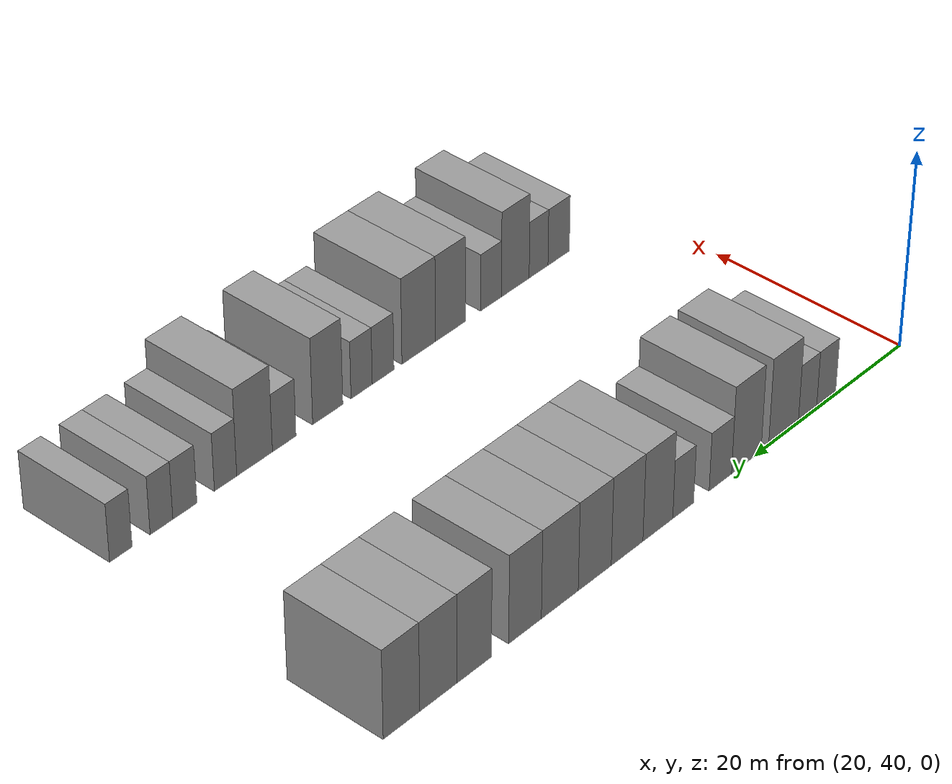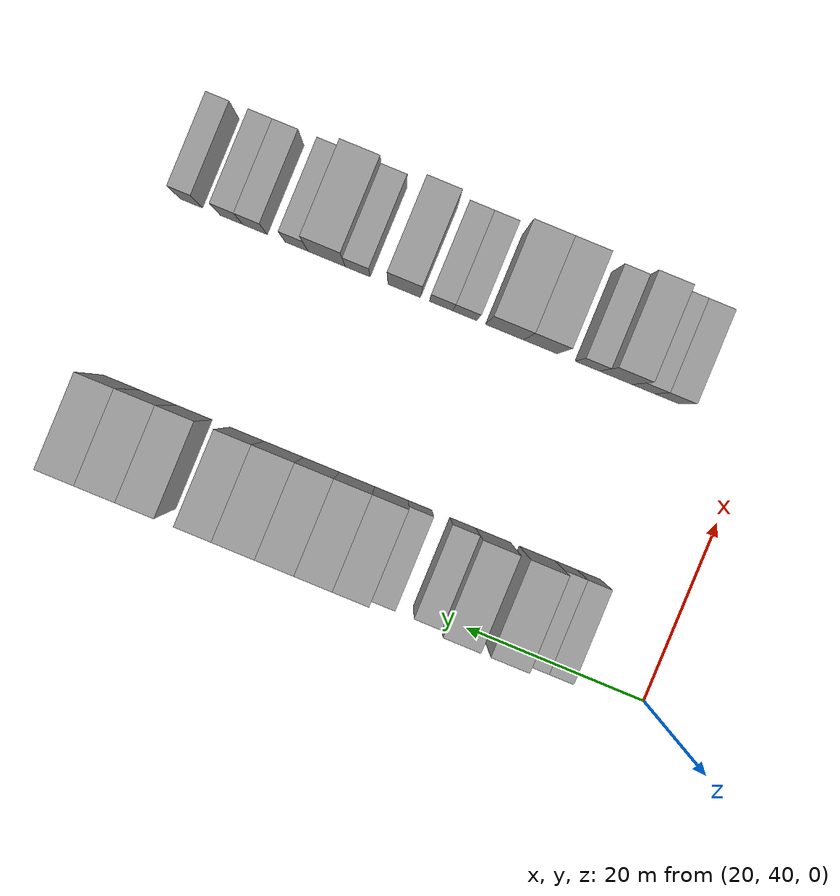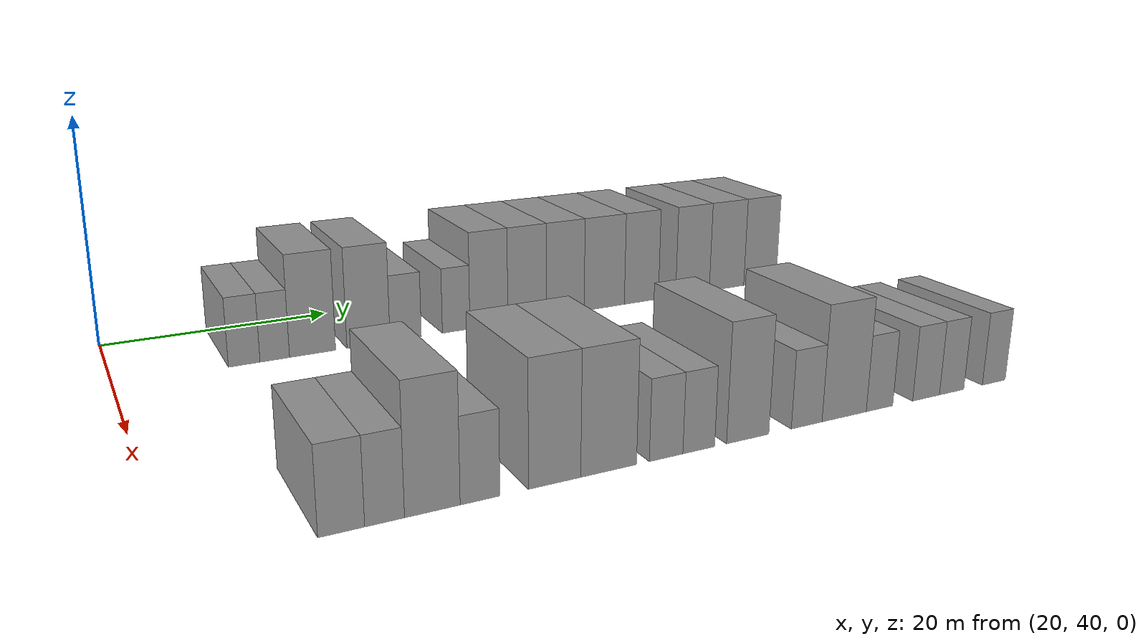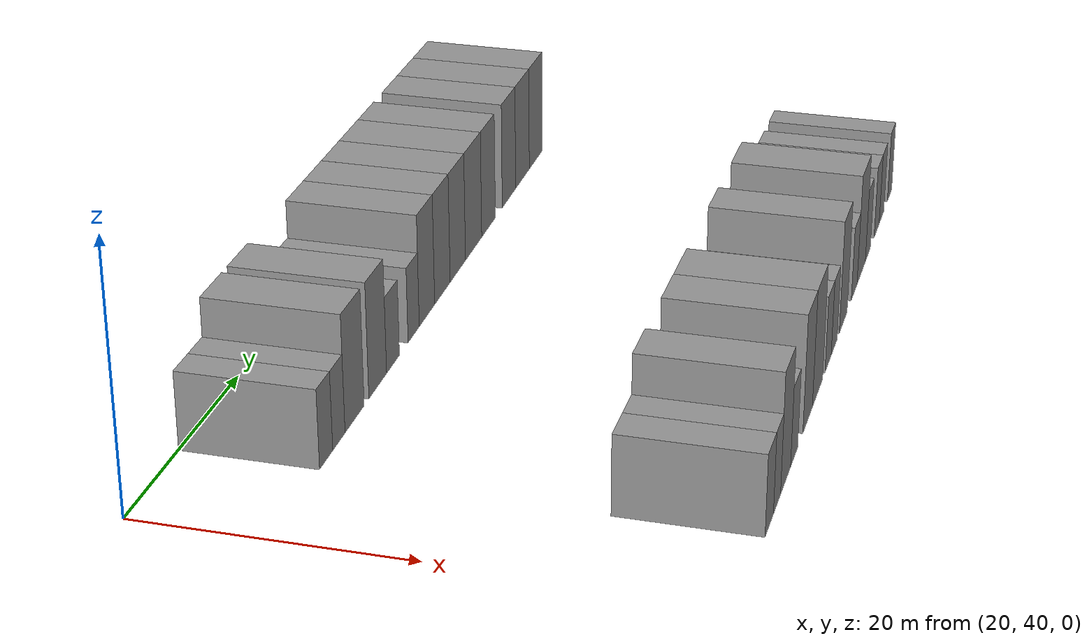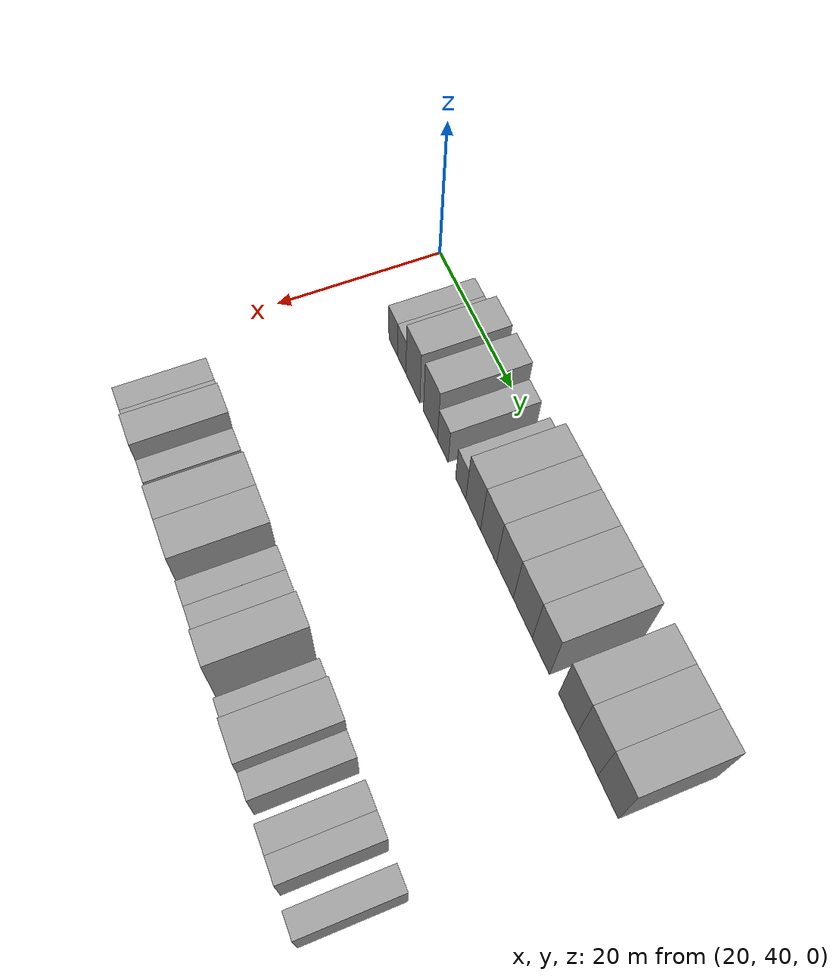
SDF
<sdf version="1.6">
 <world name="default">
  <model name="building_73">
   <static>1</static>
   <pose>25.0000 50.3773 0 0.000000 0.000000 0.000000</pose>
   <link name="link">
    <pose>0 0 3.00 0 0 0</pose>
    <collision name="collision"><geometry><box><size>10.0000 2.6068 6.0000</size></box></geometry></collision>
    <visual name="visual">
     <cast_shadows>0</cast_shadows>
     <geometry><box><size>10.0000 2.6068 6.0000</size></box></geometry>
     <material>
      <script>
       <uri>model://grey_wall/materials/scripts</uri>
       <uri>model://grey_wall/materials/textures</uri>
       <name>vrc/grey_wall</name>
      </script>
     </material>
    </visual>
   </link>
  </model>
  <model name="building_74">
   <static>1</static>
   <pose>25.0000 52.9220 0 0.000000 0.000000 0.000000</pose>
   <link name="link">
    <pose>0 0 3.00 0 0 0</pose>
    <collision name="collision"><geometry><box><size>10.0000 2.4825 6.0000</size></box></geometry></collision>
    <visual name="visual">
     <cast_shadows>0</cast_shadows>
     <geometry><box><size>10.0000 2.4825 6.0000</size></box></geometry>
     <material>
      <script>
       <uri>model://grey_wall/materials/scripts</uri>
       <uri>model://grey_wall/materials/textures</uri>
       <name>vrc/grey_wall</name>
      </script>
     </material>
    </visual>
   </link>
  </model>
  <model name="building_75">
   <static>1</static>
   <pose>25.0000 56.1605 0 0.000000 0.000000 0.000000</pose>
   <link name="link">
    <pose>0 0 4.50 0 0 0</pose>
    <collision name="collision"><geometry><box><size>10.0000 3.9944 9.0000</size></box></geometry></collision>
    <visual name="visual">
     <cast_shadows>0</cast_shadows>
     <geometry><box><size>10.0000 3.9944 9.0000</size></box></geometry>
     <material>
      <script>
       <uri>model://grey_wall/materials/scripts</uri>
       <uri>model://grey_wall/materials/textures</uri>
       <name>vrc/grey_wall</name>
      </script>
     </material>
    </visual>
   </link>
  </model>
  <model name="building_76">
   <static>1</static>
   <pose>25.0000 61.1073 0 0.000000 0.000000 0.000000</pose>
   <link name="link">
    <pose>0 0 4.50 0 0 0</pose>
    <collision name="collision"><geometry><box><size>10.0000 3.8993 9.0000</size></box></geometry></collision>
    <visual name="visual">
     <cast_shadows>0</cast_shadows>
     <geometry><box><size>10.0000 3.8993 9.0000</size></box></geometry>
     <material>
      <script>
       <uri>model://grey_wall/materials/scripts</uri>
       <uri>model://grey_wall/materials/textures</uri>
       <name>vrc/grey_wall</name>
      </script>
     </material>
    </visual>
   </link>
  </model>
  <model name="building_77">
   <static>1</static>
   <pose>25.0000 64.5142 0 0.000000 0.000000 0.000000</pose>
   <link name="link">
    <pose>0 0 3.00 0 0 0</pose>
    <collision name="collision"><geometry><box><size>10.0000 2.9145 6.0000</size></box></geometry></collision>
    <visual name="visual">
     <cast_shadows>0</cast_shadows>
     <geometry><box><size>10.0000 2.9145 6.0000</size></box></geometry>
     <material>
      <script>
       <uri>model://grey_wall/materials/scripts</uri>
       <uri>model://grey_wall/materials/textures</uri>
       <name>vrc/grey_wall</name>
      </script>
     </material>
    </visual>
   </link>
  </model>
  <model name="building_78">
   <static>1</static>
   <pose>25.0000 69.3049 0 0.000000 0.000000 0.000000</pose>
   <link name="link">
    <pose>0 0 3.00 0 0 0</pose>
    <collision name="collision"><geometry><box><size>10.0000 2.6668 6.0000</size></box></geometry></collision>
    <visual name="visual">
     <cast_shadows>0</cast_shadows>
     <geometry><box><size>10.0000 2.6668 6.0000</size></box></geometry>
     <material>
      <script>
       <uri>model://grey_wall/materials/scripts</uri>
       <uri>model://grey_wall/materials/textures</uri>
       <name>vrc/grey_wall</name>
      </script>
     </material>
    </visual>
   </link>
  </model>
  <model name="building_79">
   <static>1</static>
   <pose>25.0000 72.5242 0 0.000000 0.000000 0.000000</pose>
   <link name="link">
    <pose>0 0 4.50 0 0 0</pose>
    <collision name="collision"><geometry><box><size>10.0000 3.7717 9.0000</size></box></geometry></collision>
    <visual name="visual">
     <cast_shadows>0</cast_shadows>
     <geometry><box><size>10.0000 3.7717 9.0000</size></box></geometry>
     <material>
      <script>
       <uri>model://grey_wall/materials/scripts</uri>
       <uri>model://grey_wall/materials/textures</uri>
       <name>vrc/grey_wall</name>
      </script>
     </material>
    </visual>
   </link>
  </model>
  <model name="building_80">
   <static>1</static>
   <pose>25.0000 76.3780 0 0.000000 0.000000 0.000000</pose>
   <link name="link">
    <pose>0 0 4.50 0 0 0</pose>
    <collision name="collision"><geometry><box><size>10.0000 3.9360 9.0000</size></box></geometry></collision>
    <visual name="visual">
     <cast_shadows>0</cast_shadows>
     <geometry><box><size>10.0000 3.9360 9.0000</size></box></geometry>
     <material>
      <script>
       <uri>model://grey_wall/materials/scripts</uri>
       <uri>model://grey_wall/materials/textures</uri>
       <name>vrc/grey_wall</name>
      </script>
     </material>
    </visual>
   </link>
  </model>
  <model name="building_81">
   <static>1</static>
   <pose>25.0000 80.3650 0 0.000000 0.000000 0.000000</pose>
   <link name="link">
    <pose>0 0 4.50 0 0 0</pose>
    <collision name="collision"><geometry><box><size>10.0000 4.0379 9.0000</size></box></geometry></collision>
    <visual name="visual">
     <cast_shadows>0</cast_shadows>
     <geometry><box><size>10.0000 4.0379 9.0000</size></box></geometry>
     <material>
      <script>
       <uri>model://grey_wall/materials/scripts</uri>
       <uri>model://grey_wall/materials/textures</uri>
       <name>vrc/grey_wall</name>
      </script>
     </material>
    </visual>
   </link>
  </model>
  <model name="building_82">
   <static>1</static>
   <pose>25.0000 84.5962 0 0.000000 0.000000 0.000000</pose>
   <link name="link">
    <pose>0 0 4.50 0 0 0</pose>
    <collision name="collision"><geometry><box><size>10.0000 4.4244 9.0000</size></box></geometry></collision>
    <visual name="visual">
     <cast_shadows>0</cast_shadows>
     <geometry><box><size>10.0000 4.4244 9.0000</size></box></geometry>
     <material>
      <script>
       <uri>model://grey_wall/materials/scripts</uri>
       <uri>model://grey_wall/materials/textures</uri>
       <name>vrc/grey_wall</name>
      </script>
     </material>
    </visual>
   </link>
  </model>
  <model name="building_83">
   <static>1</static>
   <pose>25.0000 88.7380 0 0.000000 0.000000 0.000000</pose>
   <link name="link">
    <pose>0 0 4.50 0 0 0</pose>
    <collision name="collision"><geometry><box><size>10.0000 3.8592 9.0000</size></box></geometry></collision>
    <visual name="visual">
     <cast_shadows>0</cast_shadows>
     <geometry><box><size>10.0000 3.8592 9.0000</size></box></geometry>
     <material>
      <script>
       <uri>model://grey_wall/materials/scripts</uri>
       <uri>model://grey_wall/materials/textures</uri>
       <name>vrc/grey_wall</name>
      </script>
     </material>
    </visual>
   </link>
  </model>
  <model name="building_84">
   <static>1</static>
   <pose>25.0000 94.6666 0 0.000000 0.000000 0.000000</pose>
   <link name="link">
    <pose>0 0 4.50 0 0 0</pose>
    <collision name="collision"><geometry><box><size>10.0000 3.9980 9.0000</size></box></geometry></collision>
    <visual name="visual">
     <cast_shadows>0</cast_shadows>
     <geometry><box><size>10.0000 3.9980 9.0000</size></box></geometry>
     <material>
      <script>
       <uri>model://grey_wall/materials/scripts</uri>
       <uri>model://grey_wall/materials/textures</uri>
       <name>vrc/grey_wall</name>
      </script>
     </material>
    </visual>
   </link>
  </model>
  <model name="building_85">
   <static>1</static>
   <pose>25.0000 98.7705 0 0.000000 0.000000 0.000000</pose>
   <link name="link">
    <pose>0 0 4.50 0 0 0</pose>
    <collision name="collision"><geometry><box><size>10.0000 4.2097 9.0000</size></box></geometry></collision>
    <visual name="visual">
     <cast_shadows>0</cast_shadows>
     <geometry><box><size>10.0000 4.2097 9.0000</size></box></geometry>
     <material>
      <script>
       <uri>model://grey_wall/materials/scripts</uri>
       <uri>model://grey_wall/materials/textures</uri>
       <name>vrc/grey_wall</name>
      </script>
     </material>
    </visual>
   </link>
  </model>
  <model name="building_86">
   <static>1</static>
   <pose>25.0000 102.9150 0 0.000000 0.000000 0.000000</pose>
   <link name="link">
    <pose>0 0 4.50 0 0 0</pose>
    <collision name="collision"><geometry><box><size>10.0000 4.0794 9.0000</size></box></geometry></collision>
    <visual name="visual">
     <cast_shadows>0</cast_shadows>
     <geometry><box><size>10.0000 4.0794 9.0000</size></box></geometry>
     <material>
      <script>
       <uri>model://grey_wall/materials/scripts</uri>
       <uri>model://grey_wall/materials/textures</uri>
       <name>vrc/grey_wall</name>
      </script>
     </material>
    </visual>
   </link>
  </model>
  <model name="building_183">
   <static>1</static>
   <pose>55.0000 49.7704 0 0.000000 0.000000 0.000000</pose>
   <link name="link">
    <pose>0 0 3.00 0 0 0</pose>
    <collision name="collision"><geometry><box><size>10.0000 2.8810 6.0000</size></box></geometry></collision>
    <visual name="visual">
     <cast_shadows>0</cast_shadows>
     <geometry><box><size>10.0000 2.8810 6.0000</size></box></geometry>
     <material>
      <script>
       <uri>model://grey_wall/materials/scripts</uri>
       <uri>model://grey_wall/materials/textures</uri>
       <name>vrc/grey_wall</name>
      </script>
     </material>
    </visual>
   </link>
  </model>
  <model name="building_184">
   <static>1</static>
   <pose>55.0000 52.4722 0 0.000000 0.000000 0.000000</pose>
   <link name="link">
    <pose>0 0 3.00 0 0 0</pose>
    <collision name="collision"><geometry><box><size>10.0000 2.5226 6.0000</size></box></geometry></collision>
    <visual name="visual">
     <cast_shadows>0</cast_shadows>
     <geometry><box><size>10.0000 2.5226 6.0000</size></box></geometry>
     <material>
      <script>
       <uri>model://grey_wall/materials/scripts</uri>
       <uri>model://grey_wall/materials/textures</uri>
       <name>vrc/grey_wall</name>
      </script>
     </material>
    </visual>
   </link>
  </model>
  <model name="building_185">
   <static>1</static>
   <pose>55.0000 55.5651 0 0.000000 0.000000 0.000000</pose>
   <link name="link">
    <pose>0 0 4.50 0 0 0</pose>
    <collision name="collision"><geometry><box><size>10.0000 3.6631 9.0000</size></box></geometry></collision>
    <visual name="visual">
     <cast_shadows>0</cast_shadows>
     <geometry><box><size>10.0000 3.6631 9.0000</size></box></geometry>
     <material>
      <script>
       <uri>model://grey_wall/materials/scripts</uri>
       <uri>model://grey_wall/materials/textures</uri>
       <name>vrc/grey_wall</name>
      </script>
     </material>
    </visual>
   </link>
  </model>
  <model name="building_186">
   <static>1</static>
   <pose>55.0000 58.7518 0 0.000000 0.000000 0.000000</pose>
   <link name="link">
    <pose>0 0 3.00 0 0 0</pose>
    <collision name="collision"><geometry><box><size>10.0000 2.7103 6.0000</size></box></geometry></collision>
    <visual name="visual">
     <cast_shadows>0</cast_shadows>
     <geometry><box><size>10.0000 2.7103 6.0000</size></box></geometry>
     <material>
      <script>
       <uri>model://grey_wall/materials/scripts</uri>
       <uri>model://grey_wall/materials/textures</uri>
       <name>vrc/grey_wall</name>
      </script>
     </material>
    </visual>
   </link>
  </model>
  <model name="building_187">
   <static>1</static>
   <pose>55.0000 64.0148 0 0.000000 0.000000 0.000000</pose>
   <link name="link">
    <pose>0 0 4.50 0 0 0</pose>
    <collision name="collision"><geometry><box><size>10.0000 3.8157 9.0000</size></box></geometry></collision>
    <visual name="visual">
     <cast_shadows>0</cast_shadows>
     <geometry><box><size>10.0000 3.8157 9.0000</size></box></geometry>
     <material>
      <script>
       <uri>model://grey_wall/materials/scripts</uri>
       <uri>model://grey_wall/materials/textures</uri>
       <name>vrc/grey_wall</name>
      </script>
     </material>
    </visual>
   </link>
  </model>
  <model name="building_188">
   <static>1</static>
   <pose>55.0000 68.0507 0 0.000000 0.000000 0.000000</pose>
   <link name="link">
    <pose>0 0 4.50 0 0 0</pose>
    <collision name="collision"><geometry><box><size>10.0000 4.2560 9.0000</size></box></geometry></collision>
    <visual name="visual">
     <cast_shadows>0</cast_shadows>
     <geometry><box><size>10.0000 4.2560 9.0000</size></box></geometry>
     <material>
      <script>
       <uri>model://grey_wall/materials/scripts</uri>
       <uri>model://grey_wall/materials/textures</uri>
       <name>vrc/grey_wall</name>
      </script>
     </material>
    </visual>
   </link>
  </model>
  <model name="building_189">
   <static>1</static>
   <pose>55.0000 72.5235 0 0.000000 0.000000 0.000000</pose>
   <link name="link">
    <pose>0 0 3.00 0 0 0</pose>
    <collision name="collision"><geometry><box><size>10.0000 2.6896 6.0000</size></box></geometry></collision>
    <visual name="visual">
     <cast_shadows>0</cast_shadows>
     <geometry><box><size>10.0000 2.6896 6.0000</size></box></geometry>
     <material>
      <script>
       <uri>model://grey_wall/materials/scripts</uri>
       <uri>model://grey_wall/materials/textures</uri>
       <name>vrc/grey_wall</name>
      </script>
     </material>
    </visual>
   </link>
  </model>
  <model name="building_190">
   <static>1</static>
   <pose>55.0000 75.1782 0 0.000000 0.000000 0.000000</pose>
   <link name="link">
    <pose>0 0 3.00 0 0 0</pose>
    <collision name="collision"><geometry><box><size>10.0000 2.6197 6.0000</size></box></geometry></collision>
    <visual name="visual">
     <cast_shadows>0</cast_shadows>
     <geometry><box><size>10.0000 2.6197 6.0000</size></box></geometry>
     <material>
      <script>
       <uri>model://grey_wall/materials/scripts</uri>
       <uri>model://grey_wall/materials/textures</uri>
       <name>vrc/grey_wall</name>
      </script>
     </material>
    </visual>
   </link>
  </model>
  <model name="building_191">
   <static>1</static>
   <pose>55.0000 79.3121 0 0.000000 0.000000 0.000000</pose>
   <link name="link">
    <pose>0 0 4.50 0 0 0</pose>
    <collision name="collision"><geometry><box><size>10.0000 3.6480 9.0000</size></box></geometry></collision>
    <visual name="visual">
     <cast_shadows>0</cast_shadows>
     <geometry><box><size>10.0000 3.6480 9.0000</size></box></geometry>
     <material>
      <script>
       <uri>model://grey_wall/materials/scripts</uri>
       <uri>model://grey_wall/materials/textures</uri>
       <name>vrc/grey_wall</name>
      </script>
     </material>
    </visual>
   </link>
  </model>
  <model name="building_192">
   <static>1</static>
   <pose>55.0000 84.5359 0 0.000000 0.000000 0.000000</pose>
   <link name="link">
    <pose>0 0 3.00 0 0 0</pose>
    <collision name="collision"><geometry><box><size>10.0000 2.7995 6.0000</size></box></geometry></collision>
    <visual name="visual">
     <cast_shadows>0</cast_shadows>
     <geometry><box><size>10.0000 2.7995 6.0000</size></box></geometry>
     <material>
      <script>
       <uri>model://grey_wall/materials/scripts</uri>
       <uri>model://grey_wall/materials/textures</uri>
       <name>vrc/grey_wall</name>
      </script>
     </material>
    </visual>
   </link>
  </model>
  <model name="building_193">
   <static>1</static>
   <pose>55.0000 88.0263 0 0.000000 0.000000 0.000000</pose>
   <link name="link">
    <pose>0 0 4.50 0 0 0</pose>
    <collision name="collision"><geometry><box><size>10.0000 4.1814 9.0000</size></box></geometry></collision>
    <visual name="visual">
     <cast_shadows>0</cast_shadows>
     <geometry><box><size>10.0000 4.1814 9.0000</size></box></geometry>
     <material>
      <script>
       <uri>model://grey_wall/materials/scripts</uri>
       <uri>model://grey_wall/materials/textures</uri>
       <name>vrc/grey_wall</name>
      </script>
     </material>
    </visual>
   </link>
  </model>
  <model name="building_194">
   <static>1</static>
   <pose>55.0000 91.4083 0 0.000000 0.000000 0.000000</pose>
   <link name="link">
    <pose>0 0 3.00 0 0 0</pose>
    <collision name="collision"><geometry><box><size>10.0000 2.5824 6.0000</size></box></geometry></collision>
    <visual name="visual">
     <cast_shadows>0</cast_shadows>
     <geometry><box><size>10.0000 2.5824 6.0000</size></box></geometry>
     <material>
      <script>
       <uri>model://grey_wall/materials/scripts</uri>
       <uri>model://grey_wall/materials/textures</uri>
       <name>vrc/grey_wall</name>
      </script>
     </material>
    </visual>
   </link>
  </model>
  <model name="building_195">
   <static>1</static>
   <pose>55.0000 96.0650 0 0.000000 0.000000 0.000000</pose>
   <link name="link">
    <pose>0 0 3.00 0 0 0</pose>
    <collision name="collision"><geometry><box><size>10.0000 2.7311 6.0000</size></box></geometry></collision>
    <visual name="visual">
     <cast_shadows>0</cast_shadows>
     <geometry><box><size>10.0000 2.7311 6.0000</size></box></geometry>
     <material>
      <script>
       <uri>model://grey_wall/materials/scripts</uri>
       <uri>model://grey_wall/materials/textures</uri>
       <name>vrc/grey_wall</name>
      </script>
     </material>
    </visual>
   </link>
  </model>
  <model name="building_196">
   <static>1</static>
   <pose>55.0000 98.7081 0 0.000000 0.000000 0.000000</pose>
   <link name="link">
    <pose>0 0 3.00 0 0 0</pose>
    <collision name="collision"><geometry><box><size>10.0000 2.5551 6.0000</size></box></geometry></collision>
    <visual name="visual">
     <cast_shadows>0</cast_shadows>
     <geometry><box><size>10.0000 2.5551 6.0000</size></box></geometry>
     <material>
      <script>
       <uri>model://grey_wall/materials/scripts</uri>
       <uri>model://grey_wall/materials/textures</uri>
       <name>vrc/grey_wall</name>
      </script>
     </material>
    </visual>
   </link>
  </model>
  <model name="building_197">
   <static>1</static>
   <pose>55.0000 103.2326 0 0.000000 0.000000 0.000000</pose>
   <link name="link">
    <pose>0 0 3.00 0 0 0</pose>
    <collision name="collision"><geometry><box><size>10.0000 2.4939 6.0000</size></box></geometry></collision>
    <visual name="visual">
     <cast_shadows>0</cast_shadows>
     <geometry><box><size>10.0000 2.4939 6.0000</size></box></geometry>
     <material>
      <script>
       <uri>model://grey_wall/materials/scripts</uri>
       <uri>model://grey_wall/materials/textures</uri>
       <name>vrc/grey_wall</name>
      </script>
     </material>
    </visual>
   </link>
  </model>
 </world>
</sdf>
